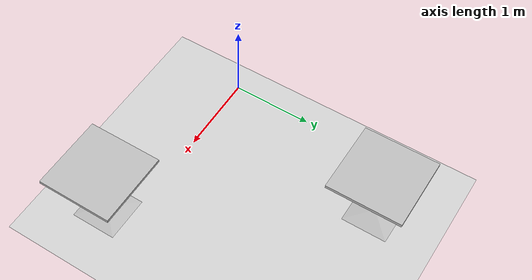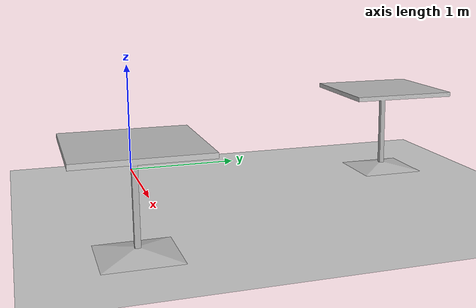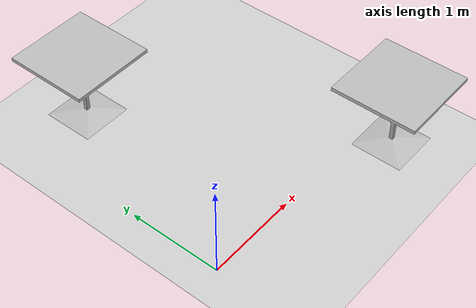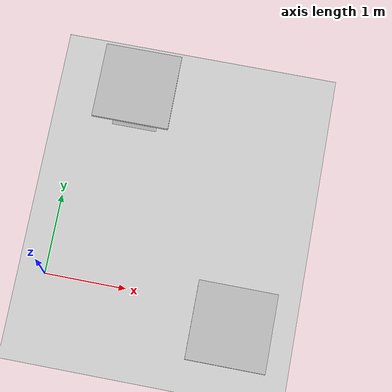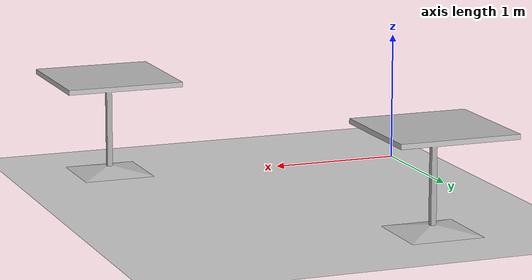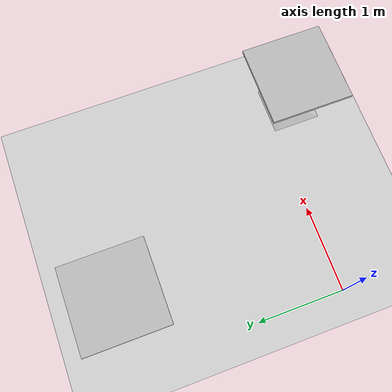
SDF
<sdf version="1.6">
 <world name="default">
  <plugin name="ros_link_attacher_plugin" filename="libgazebo_ros_link_attacher.so"/>
  <light name="sun" type="directional">
   <pose>0 0 10 0 -0 0</pose>
   <diffuse>0.8 0.8 0.8 1</diffuse>
   <specular>0.1 0.1 0.1 1</specular>
   <attenuation>
    <range>1000</range>
    <constant>0.9</constant>
    <linear>0.01</linear>
    <quadratic>0.001</quadratic>
   </attenuation>
   <direction>-0.5 0.5 -1</direction>
  </light>
  <model name="ground_plane">
   <static>1</static>
   <link name="link">
    <collision name="collision">
     <geometry><plane><normal>0 0 1</normal><size>100 100</size></plane></geometry>
     <surface><friction><ode><mu>100</mu><mu2>50</mu2></ode></friction></surface>
    </collision>
    <visual name="visual">
     <cast_shadows>0</cast_shadows>
     <geometry><plane><normal>0 0 1</normal><size>100 100</size></plane></geometry>
     <material>
      <script><uri>file://media/materials/scripts/gazebo.material</uri><name>Gazebo/Grey</name></script>
     </material>
    </visual>
   </link>
  </model>
  <gravity>0 0 -9.8</gravity>
  <magnetic_field>6e-06 2.3e-05 -4.2e-05</magnetic_field>
  <atmosphere type="adiabatic"/>
  <physics name="default_physics" default="0" type="ode">
   <max_step_size>0.001</max_step_size>
   <real_time_factor>1</real_time_factor>
   <real_time_update_rate>1000</real_time_update_rate>
  </physics>
  <scene><ambient>0.4 0.4 0.4 1</ambient><background>0.7 0.7 0.7 1</background><shadows>1</shadows></scene>
  <spherical_coordinates>
   <surface_model>EARTH_WGS84</surface_model>
   <latitude_deg>0</latitude_deg>
   <longitude_deg>0</longitude_deg>
   <elevation>0</elevation>
   <heading_deg>0</heading_deg>
  </spherical_coordinates>
  <model name="cafe_table">
   <static>1</static>
   <link name="link">
    <collision name="surface">
     <pose>0 0 0.755 0 -0 0</pose>
     <geometry><box><size>0.913 0.913 0.04</size></box></geometry>
    </collision>
    <collision name="column">
     <pose>0 0 0.37 0 -0 0</pose>
     <geometry><box><size>0.042 0.042 0.74</size></box></geometry>
    </collision>
    <collision name="base">
     <pose>0 0 0.02 0 -0 0</pose>
     <geometry><box><size>0.56 0.56 0.04</size></box></geometry>
    </collision>
    <visual name="visual">
     <geometry><mesh><uri>model://cafe_table/meshes/cafe_table.dae</uri><scale>1 1 1</scale></mesh></geometry>
    </visual>
   </link>
   <pose>2.3 -0.3 0 0 -0 0</pose>
  </model>
  <model name="cafe_table2">
   <static>1</static>
   <link name="link">
    <collision name="surface">
     <pose>0 0 0.755 0 -0 0</pose>
     <geometry><box><size>0.913 0.913 0.04</size></box></geometry>
    </collision>
    <collision name="column">
     <pose>0 0 0.37 0 -0 0</pose>
     <geometry><box><size>0.042 0.042 0.74</size></box></geometry>
    </collision>
    <collision name="base">
     <pose>0 0 0.02 0 -0 0</pose>
     <geometry><box><size>0.56 0.56 0.04</size></box></geometry>
    </collision>
    <visual name="visual">
     <geometry><mesh><uri>model://cafe_table/meshes/cafe_table.dae</uri><scale>1 1 1</scale></mesh></geometry>
    </visual>
   </link>
   <pose>0.7 2.3 0 0 -0 0</pose>
  </model>
 </world>
</sdf>
